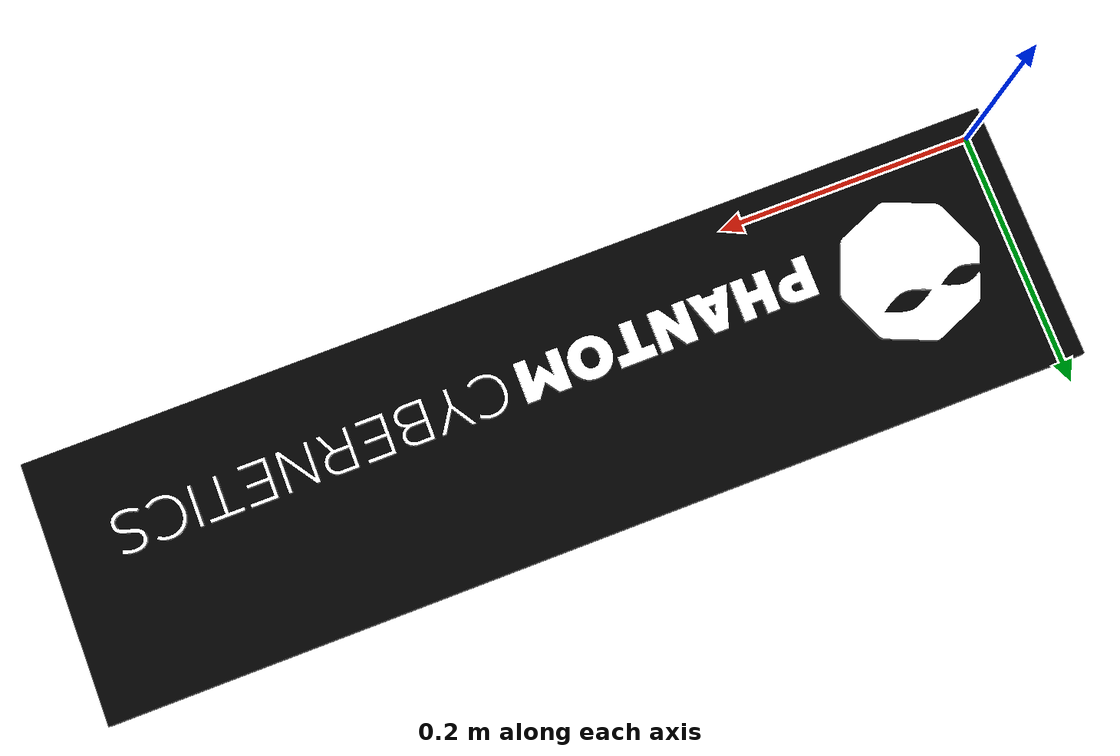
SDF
<?xml version="1.0" ?>
<sdf version="1.6">
    <model name="phantom_cybernetics_logo">
        <static>true</static>
        <link name="link">
            <visual name="visual">
                <cast_shadows>true</cast_shadows>
                <geometry>
                    <mesh>
                        <uri>model://phantom_cybernetics_logo/meshes/phantom-cybernetics-logo.dae</uri>
                        <scale>1.6 1.6 1.6</scale>
                    </mesh>
                </geometry>
                <plugin filename="gz-sim-label-system" name="gz::sim::systems::Label">
                    <label>2</label>
                </plugin>
            </visual>
        </link>
    </model>
</sdf>
